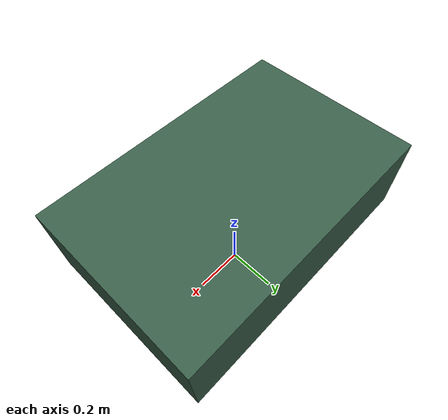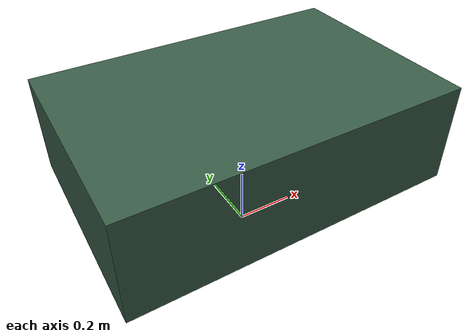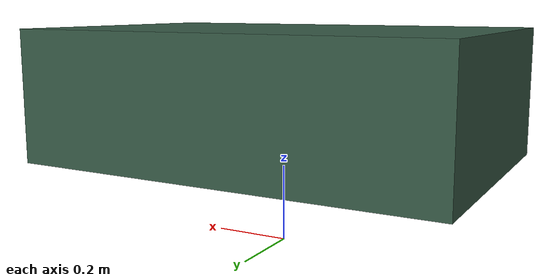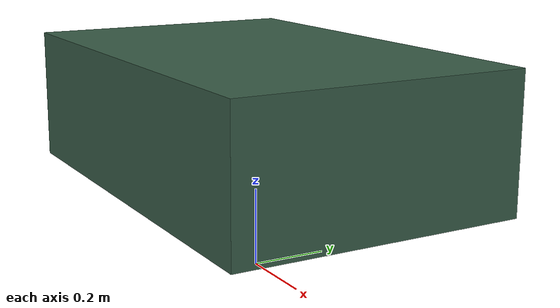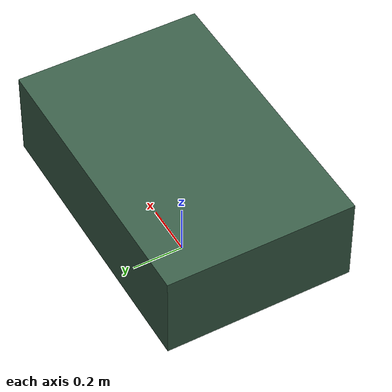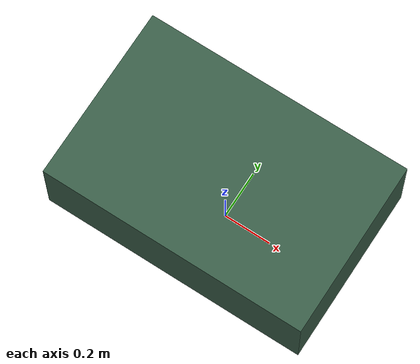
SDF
<?xml version="1.0" ?>
<sdf version="1.9">
  <model name="fireant_ugv">
    <pose>0 0 0.22 0 0 0</pose>
    <static>false</static>
    <self_collide>false</self_collide>

    <link name="chassis">
      <pose>0 0 0 0 0 0</pose>
      <inertial>
        <mass>42.0</mass>
        <inertia>
          <ixx>3.4</ixx>
          <iyy>5.2</iyy>
          <izz>6.8</izz>
          <ixy>0.0</ixy>
          <ixz>0.0</ixz>
          <iyz>0.0</iyz>
        </inertia>
      </inertial>
      <collision name="chassis_collision">
        <geometry>
          <box>
            <size>1.1 0.72 0.34</size>
          </box>
        </geometry>
      </collision>
      <visual name="chassis_visual">
        <geometry>
          <mesh>
            <uri>model://fireant-ugv/meshes/fireant_chassis.obj</uri>
          </mesh>
        </geometry>
        <material>
          <ambient>0.12 0.24 0.18 1</ambient>
          <diffuse>0.22 0.36 0.28 1</diffuse>
        </material>
      </visual>
      <sensor name="front_lidar" type="gpu_lidar">
        <pose>0.45 0 0.18 0 0 0</pose>
        <topic>/fireant/lidar</topic>
        <ray>
          <scan>
            <horizontal>
              <samples>720</samples>
              <min_angle>-1.57</min_angle>
              <max_angle>1.57</max_angle>
            </horizontal>
          </scan>
          <range>
            <min>0.2</min>
            <max>60</max>
            <resolution>0.01</resolution>
          </range>
        </ray>
      </sensor>
      <sensor name="imu" type="imu">
        <topic>/fireant/imu</topic>
      </sensor>
      <sensor name="front_camera" type="camera">
        <pose>0.36 0 0.22 0 0 0</pose>
        <camera>
          <horizontal_fov>1.12</horizontal_fov>
          <image>
            <width>1280</width>
            <height>720</height>
            <format>R8G8B8</format>
          </image>
        </camera>
      </sensor>
    </link>
  </model>
</sdf>
